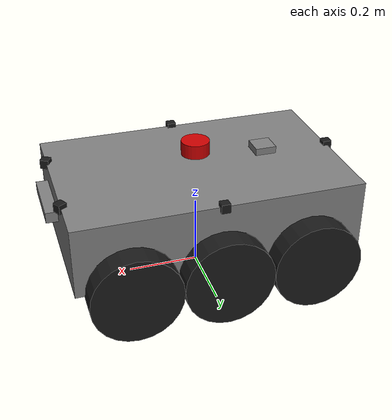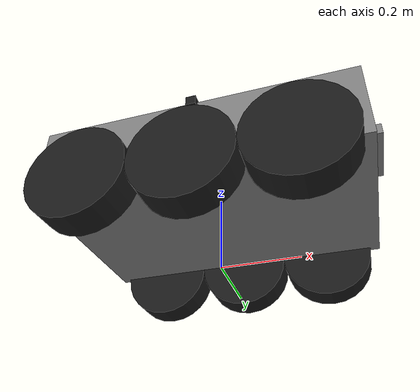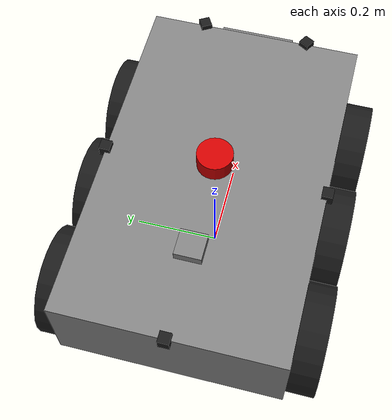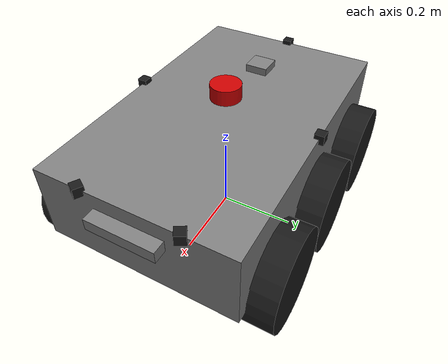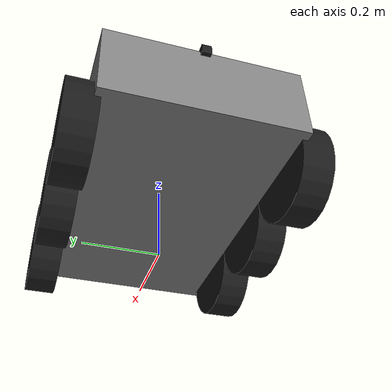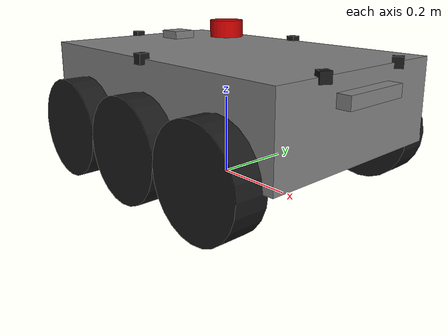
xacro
<?xml version="1.0"?>
<robot xmlns:xacro="http://www.ros.org/wiki/xacro" name="autonomous_rover">

  <!-- Properties -->
  <xacro:property name="chassis_length" value="0.8"/>
  <xacro:property name="chassis_width" value="0.5"/>
  <xacro:property name="chassis_height" value="0.2"/>
  <xacro:property name="chassis_mass" value="30.0"/>  <!-- Increased for Jetson AGX + batteries -->

  <xacro:property name="wheel_radius" value="0.125"/>
  <xacro:property name="wheel_width" value="0.08"/>
  <xacro:property name="wheel_mass" value="2.5"/>
  <xacro:property name="wheel_separation_width" value="0.55"/>
  <xacro:property name="wheel_separation_length" value="0.5"/>

  <!-- Materials -->
  <material name="black">
    <color rgba="0.1 0.1 0.1 1"/>
  </material>

  <material name="gray">
    <color rgba="0.5 0.5 0.5 1"/>
  </material>

  <material name="red">
    <color rgba="0.8 0.0 0.0 1"/>
  </material>

  <!-- Base Link -->
  <link name="base_link"/>

  <!-- Base Footprint -->
  <link name="base_footprint"/>

  <joint name="base_footprint_joint" type="fixed">
    <parent link="base_footprint"/>
    <child link="base_link"/>
    <origin xyz="0 0 ${wheel_radius}" rpy="0 0 0"/>
  </joint>

  <!-- Chassis -->
  <link name="chassis">
    <visual>
      <origin xyz="0 0 0" rpy="0 0 0"/>
      <geometry>
        <box size="${chassis_length} ${chassis_width} ${chassis_height}"/>
      </geometry>
      <material name="gray"/>
    </visual>
    <collision>
      <origin xyz="0 0 0" rpy="0 0 0"/>
      <geometry>
        <box size="${chassis_length} ${chassis_width} ${chassis_height}"/>
      </geometry>
    </collision>
    <inertial>
      <mass value="${chassis_mass}"/>
      <origin xyz="0 0 0" rpy="0 0 0"/>
      <inertia ixx="${(1/12) * chassis_mass * (chassis_width*chassis_width + chassis_height*chassis_height)}"
               ixy="0.0"
               ixz="0.0"
               iyy="${(1/12) * chassis_mass * (chassis_length*chassis_length + chassis_height*chassis_height)}"
               iyz="0.0"
               izz="${(1/12) * chassis_mass * (chassis_length*chassis_length + chassis_width*chassis_width)}"/>
    </inertial>
  </link>

  <joint name="chassis_joint" type="fixed">
    <parent link="base_link"/>
    <child link="chassis"/>
    <origin xyz="0 0 ${chassis_height/2}" rpy="0 0 0"/>
  </joint>

  <!-- Wheel Macro -->
  <xacro:macro name="wheel" params="prefix side_prefix x_pos y_pos">
    <link name="${prefix}_${side_prefix}_wheel">
      <visual>
        <origin xyz="0 0 0" rpy="${pi/2} 0 0"/>
        <geometry>
          <cylinder radius="${wheel_radius}" length="${wheel_width}"/>
        </geometry>
        <material name="black"/>
      </visual>
      <collision>
        <origin xyz="0 0 0" rpy="${pi/2} 0 0"/>
        <geometry>
          <cylinder radius="${wheel_radius}" length="${wheel_width}"/>
        </geometry>
      </collision>
      <inertial>
        <mass value="${wheel_mass}"/>
        <origin xyz="0 0 0" rpy="${pi/2} 0 0"/>
        <inertia ixx="${(1/12) * wheel_mass * (3*wheel_radius*wheel_radius + wheel_width*wheel_width)}"
                 ixy="0.0"
                 ixz="0.0"
                 iyy="${(1/12) * wheel_mass * (3*wheel_radius*wheel_radius + wheel_width*wheel_width)}"
                 iyz="0.0"
                 izz="${(1/2) * wheel_mass * wheel_radius * wheel_radius}"/>
      </inertial>
    </link>

    <joint name="${prefix}_${side_prefix}_wheel_joint" type="continuous">
      <parent link="base_link"/>
      <child link="${prefix}_${side_prefix}_wheel"/>
      <origin xyz="${x_pos} ${y_pos} 0" rpy="0 0 0"/>
      <axis xyz="0 1 0"/>
    </joint>
  </xacro:macro>

  <!-- Front Wheels -->
  <xacro:wheel prefix="front" side_prefix="left" x_pos="${wheel_separation_length/2}" y_pos="${wheel_separation_width/2}"/>
  <xacro:wheel prefix="front" side_prefix="right" x_pos="${wheel_separation_length/2}" y_pos="${-wheel_separation_width/2}"/>

  <!-- Middle Wheels -->
  <xacro:wheel prefix="middle" side_prefix="left" x_pos="0" y_pos="${wheel_separation_width/2}"/>
  <xacro:wheel prefix="middle" side_prefix="right" x_pos="0" y_pos="${-wheel_separation_width/2}"/>

  <!-- Rear Wheels -->
  <xacro:wheel prefix="rear" side_prefix="left" x_pos="${-wheel_separation_length/2}" y_pos="${wheel_separation_width/2}"/>
  <xacro:wheel prefix="rear" side_prefix="right" x_pos="${-wheel_separation_length/2}" y_pos="${-wheel_separation_width/2}"/>

  <!-- RPLidar -->
  <link name="laser">
    <visual>
      <origin xyz="0 0 0" rpy="0 0 0"/>
      <geometry>
        <cylinder radius="0.04" length="0.04"/>
      </geometry>
      <material name="red"/>
    </visual>
    <collision>
      <origin xyz="0 0 0" rpy="0 0 0"/>
      <geometry>
        <cylinder radius="0.04" length="0.04"/>
      </geometry>
    </collision>
    <inertial>
      <mass value="0.2"/>
      <origin xyz="0 0 0" rpy="0 0 0"/>
      <inertia ixx="0.0001" ixy="0.0" ixz="0.0" iyy="0.0001" iyz="0.0" izz="0.0001"/>
    </inertial>
  </link>

  <joint name="laser_joint" type="fixed">
    <parent link="chassis"/>
    <child link="laser"/>
    <origin xyz="0 0 ${chassis_height/2 + 0.05}" rpy="0 0 0"/>
  </joint>

  <!-- ZED 2i Camera -->
  <link name="camera_link">
    <visual>
      <origin xyz="0 0 0" rpy="0 0 0"/>
      <geometry>
        <box size="0.033 0.175 0.03"/>
      </geometry>
      <material name="gray"/>
    </visual>
    <collision>
      <origin xyz="0 0 0" rpy="0 0 0"/>
      <geometry>
        <box size="0.033 0.175 0.03"/>
      </geometry>
    </collision>
    <inertial>
      <mass value="0.15"/>
      <origin xyz="0 0 0" rpy="0 0 0"/>
      <inertia ixx="0.0001" ixy="0.0" ixz="0.0" iyy="0.0001" iyz="0.0" izz="0.0001"/>
    </inertial>
  </link>

  <joint name="camera_joint" type="fixed">
    <parent link="chassis"/>
    <child link="camera_link"/>
    <origin xyz="${chassis_length/2 + 0.02} 0 ${chassis_height/4}" rpy="0 0 0"/>
  </joint>

  <!-- Camera Optical Frame -->
  <link name="camera_optical_frame"/>

  <joint name="camera_optical_joint" type="fixed">
    <parent link="camera_link"/>
    <child link="camera_optical_frame"/>
    <origin xyz="0 0 0" rpy="${-pi/2} 0 ${-pi/2}"/>
  </joint>

  <!-- IMU (from ZED 2i) -->
  <link name="imu_link"/>

  <joint name="imu_joint" type="fixed">
    <parent link="camera_link"/>
    <child link="imu_link"/>
    <origin xyz="0 0 0" rpy="0 0 0"/>
  </joint>

  <!-- GPS (EMLID REACH M2) -->
  <link name="gps_link">
    <visual>
      <origin xyz="0 0 0" rpy="0 0 0"/>
      <geometry>
        <box size="0.06 0.06 0.02"/>
      </geometry>
      <material name="gray"/>
    </visual>
    <collision>
      <origin xyz="0 0 0" rpy="0 0 0"/>
      <geometry>
        <box size="0.06 0.06 0.02"/>
      </geometry>
    </collision>
    <inertial>
      <mass value="0.05"/>
      <origin xyz="0 0 0" rpy="0 0 0"/>
      <inertia ixx="0.00001" ixy="0.0" ixz="0.0" iyy="0.00001" iyz="0.0" izz="0.00001"/>
    </inertial>
  </link>

  <joint name="gps_joint" type="fixed">
    <parent link="chassis"/>
    <child link="gps_link"/>
    <origin xyz="${-chassis_length/4} 0 ${chassis_height/2 + 0.02}" rpy="0 0 0"/>
  </joint>

  <!-- Sony Camera Macro for multiple angles -->
  <xacro:macro name="sony_camera" params="name x y z roll pitch yaw">
    <link name="${name}">
      <visual>
        <origin xyz="0 0 0" rpy="0 0 0"/>
        <geometry>
          <box size="0.025 0.025 0.025"/>
        </geometry>
        <material name="black"/>
      </visual>
      <collision>
        <origin xyz="0 0 0" rpy="0 0 0"/>
        <geometry>
          <box size="0.025 0.025 0.025"/>
        </geometry>
      </collision>
      <inertial>
        <mass value="0.05"/>
        <origin xyz="0 0 0" rpy="0 0 0"/>
        <inertia ixx="0.00001" ixy="0.0" ixz="0.0" iyy="0.00001" iyz="0.0" izz="0.00001"/>
      </inertial>
    </link>

    <joint name="${name}_joint" type="fixed">
      <parent link="chassis"/>
      <child link="${name}"/>
      <origin xyz="${x} ${y} ${z}" rpy="${roll} ${pitch} ${yaw}"/>
    </joint>
  </xacro:macro>

  <!-- Sony Cameras at different angles -->
  <!-- Front-left camera -->
  <xacro:sony_camera name="sony_camera_fl"
                     x="${chassis_length/2}"
                     y="${chassis_width/4}"
                     z="${chassis_height/2}"
                     roll="0" pitch="0" yaw="${pi/6}"/>

  <!-- Front-right camera -->
  <xacro:sony_camera name="sony_camera_fr"
                     x="${chassis_length/2}"
                     y="${-chassis_width/4}"
                     z="${chassis_height/2}"
                     roll="0" pitch="0" yaw="${-pi/6}"/>

  <!-- Rear camera -->
  <xacro:sony_camera name="sony_camera_rear"
                     x="${-chassis_length/2}"
                     y="0"
                     z="${chassis_height/2}"
                     roll="0" pitch="0" yaw="${pi}"/>

  <!-- Left side camera -->
  <xacro:sony_camera name="sony_camera_left"
                     x="0"
                     y="${chassis_width/2}"
                     z="${chassis_height/2}"
                     roll="0" pitch="0" yaw="${pi/2}"/>

  <!-- Right side camera -->
  <xacro:sony_camera name="sony_camera_right"
                     x="0"
                     y="${-chassis_width/2}"
                     z="${chassis_height/2}"
                     roll="0" pitch="0" yaw="${-pi/2}"/>

</robot>
